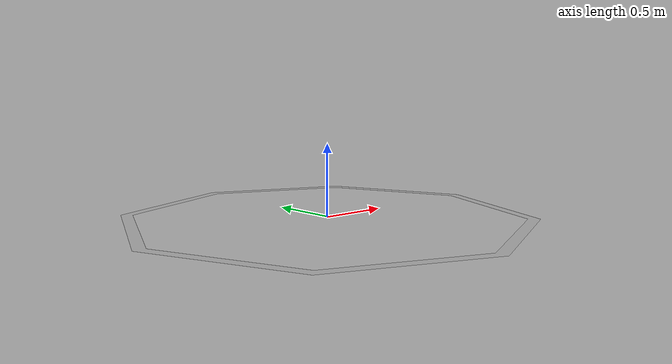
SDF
<?xml version="1.0" ?>
<sdf version="1.5">
  <model name="octagon">
    <static>true</static>
    <link name="base_link">

      <collision name="collision">
        <pose>0 0 0 0 0 0</pose>
        <geometry>
          <mesh>
            <uri>model://octagon/meshes/octagon.dae</uri>
          </mesh>
        </geometry>
      </collision>

      <visual name="visual">
        <cast_shadows>true</cast_shadows>
        <pose>0 0 0 0 0 0</pose>
        <geometry>
          <mesh>
            <uri>model://octagon/meshes/octagon.dae</uri>
          </mesh>
        </geometry>
      </visual>
    </link>
  </model>
</sdf>
